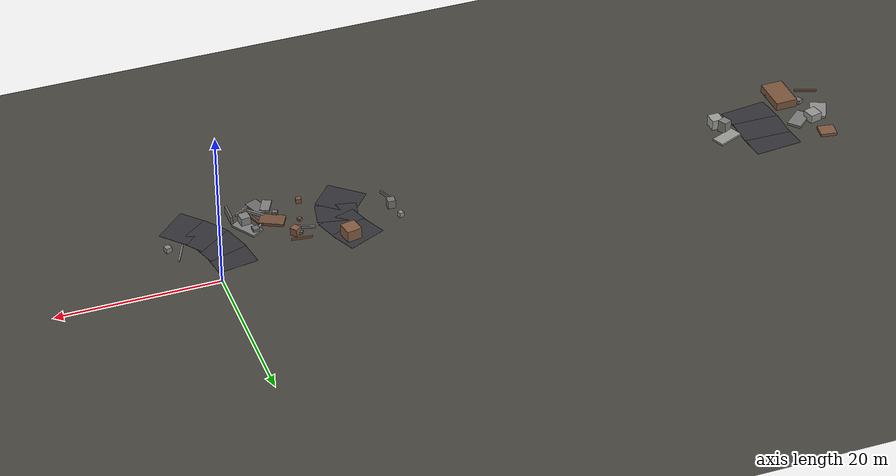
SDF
<sdf version="1.6">
 <world name="navitas_arena">
  <model name="ground_plane">
   <static>true</static>
   <link name="link">
    <collision name="collision">
     <geometry><plane><normal>0 0 1</normal><size>400 400</size></plane></geometry>
     <surface><friction><ode><mu>0.820</mu><mu2>0.820</mu2></ode></friction></surface>
    </collision>
    <visual name="visual">
     <cast_shadows>false</cast_shadows>
     <geometry><plane><normal>0 0 1</normal><size>400 400</size></plane></geometry>
     <material><ambient>0.280 0.270 0.250 1</ambient><diffuse>0.280 0.270 0.250 1</diffuse></material>
    </visual>
   </link>
  </model>
  <model name="road_kolay_3_10">
   <static>true</static>
   <pose>-71.006 -9.460 0.040 0 0 1.691</pose>
   <link name="link">
    <collision name="col"><geometry><box><size>3.841 6.000 0.020</size></box></geometry></collision>
    <visual name="vis">
     <geometry><box><size>3.841 6.000 0.020</size></box></geometry>
     <material><ambient>0.20 0.20 0.22 1</ambient><diffuse>0.20 0.20 0.22 1</diffuse></material>
    </visual>
   </link>
  </model>
  <model name="road_kolay_3_11">
   <static>true</static>
   <pose>-71.169 -6.600 0.040 0 0 1.562</pose>
   <link name="link">
    <collision name="col"><geometry><box><size>3.700 6.000 0.020</size></box></geometry></collision>
    <visual name="vis">
     <geometry><box><size>3.700 6.000 0.020</size></box></geometry>
     <material><ambient>0.20 0.20 0.22 1</ambient><diffuse>0.20 0.20 0.22 1</diffuse></material>
    </visual>
   </link>
  </model>
  <model name="road_kolay_3_12">
   <static>true</static>
   <pose>-71.288 -3.800 0.040 0 0 1.665</pose>
   <link name="link">
    <collision name="col"><geometry><box><size>3.712 6.000 0.020</size></box></geometry></collision>
    <visual name="vis">
     <geometry><box><size>3.712 6.000 0.020</size></box></geometry>
     <material><ambient>0.20 0.20 0.22 1</ambient><diffuse>0.20 0.20 0.22 1</diffuse></material>
    </visual>
   </link>
  </model>
  <model name="deb_kolay_3">
   <static>true</static>
   <pose>-79.308 -7.609 0.137 0 0 1.115</pose>
   <link name="link">
    <collision name="col"><geometry><box><size>3.014 1.987 0.275</size></box></geometry></collision>
    <visual name="vis">
     <geometry><box><size>3.014 1.987 0.275</size></box></geometry>
     <material><ambient>0.56 0.56 0.55 1</ambient><diffuse>0.56 0.56 0.55 1</diffuse></material>
    </visual>
   </link>
  </model>
  <model name="deb_kolay_14">
   <static>true</static>
   <pose>-66.635 -8.527 0.602 0 0 0.726</pose>
   <link name="link">
    <collision name="col"><geometry><box><size>0.950 0.950 1.205</size></box></geometry></collision>
    <visual name="vis">
     <geometry><box><size>0.950 0.950 1.205</size></box></geometry>
     <material><ambient>0.52 0.52 0.51 1</ambient><diffuse>0.52 0.52 0.51 1</diffuse></material>
    </visual>
   </link>
  </model>
  <model name="deb_kolay_21">
   <static>true</static>
   <pose>-66.365 -6.209 0.117 0 0 0.407</pose>
   <link name="link">
    <collision name="col"><geometry><box><size>3.357 1.596 0.233</size></box></geometry></collision>
    <visual name="vis">
     <geometry><box><size>3.357 1.596 0.233</size></box></geometry>
     <material><ambient>0.60 0.60 0.59 1</ambient><diffuse>0.60 0.60 0.59 1</diffuse></material>
    </visual>
   </link>
  </model>
  <model name="deb_kolay_25">
   <static>true</static>
   <pose>-76.251 -6.573 0.159 0 0 0.723</pose>
   <link name="link">
    <collision name="col"><geometry><box><size>3.124 1.762 0.317</size></box></geometry></collision>
    <visual name="vis">
     <geometry><box><size>3.124 1.762 0.317</size></box></geometry>
     <material><ambient>0.48 0.48 0.47 1</ambient><diffuse>0.48 0.48 0.47 1</diffuse></material>
    </visual>
   </link>
  </model>
  <model name="deb_kolay_36">
   <static>true</static>
   <pose>-77.851 -10.136 0.250 0 0 2.086</pose>
   <link name="link">
    <collision name="col"><geometry><box><size>0.731 0.731 0.499</size></box></geometry></collision>
    <visual name="vis">
     <geometry><box><size>0.731 0.731 0.499</size></box></geometry>
     <material><ambient>0.47 0.47 0.46 1</ambient><diffuse>0.47 0.47 0.46 1</diffuse></material>
    </visual>
   </link>
  </model>
  <model name="deb_kolay_39">
   <static>true</static>
   <pose>-77.983 -6.365 0.528 0 0 1.813</pose>
   <link name="link">
    <collision name="col"><geometry><box><size>1.556 1.556 1.057</size></box></geometry></collision>
    <visual name="vis">
     <geometry><box><size>1.556 1.556 1.057</size></box></geometry>
     <material><ambient>0.59 0.59 0.58 1</ambient><diffuse>0.59 0.59 0.58 1</diffuse></material>
    </visual>
   </link>
  </model>
  <model name="deb_kolay_44">
   <static>true</static>
   <pose>-78.428 -3.125 0.188 0 0 2.985</pose>
   <link name="link">
    <collision name="col"><geometry><box><size>2.029 1.820 0.375</size></box></geometry></collision>
    <visual name="vis">
     <geometry><box><size>2.029 1.820 0.375</size></box></geometry>
     <material><ambient>0.50 0.35 0.25 1</ambient><diffuse>0.50 0.35 0.25 1</diffuse></material>
    </visual>
   </link>
  </model>
  <model name="deb_kolay_55">
   <static>true</static>
   <pose>-75.973 -12.256 0.158 0 0 0.203</pose>
   <link name="link">
    <collision name="col"><geometry><box><size>2.849 1.583 0.316</size></box></geometry></collision>
    <visual name="vis">
     <geometry><box><size>2.849 1.583 0.316</size></box></geometry>
     <material><ambient>0.45 0.45 0.44 1</ambient><diffuse>0.45 0.45 0.44 1</diffuse></material>
    </visual>
   </link>
  </model>
  <model name="deb_kolay_103">
   <static>true</static>
   <pose>-79.718 -12.136 0.106 0 0 2.789</pose>
   <link name="link">
    <collision name="col"><geometry><box><size>2.770 0.225 0.213</size></box></geometry></collision>
    <visual name="vis">
     <geometry><box><size>2.770 0.225 0.213</size></box></geometry>
     <material><ambient>0.45 0.32 0.23 1</ambient><diffuse>0.45 0.32 0.23 1</diffuse></material>
    </visual>
   </link>
  </model>
  <model name="deb_kolay_140">
   <static>true</static>
   <pose>-66.705 -7.771 0.739 0 0 2.046</pose>
   <link name="link">
    <collision name="col"><geometry><box><size>1.137 1.137 1.478</size></box></geometry></collision>
    <visual name="vis">
     <geometry><box><size>1.137 1.137 1.478</size></box></geometry>
     <material><ambient>0.49 0.49 0.48 1</ambient><diffuse>0.49 0.49 0.48 1</diffuse></material>
    </visual>
   </link>
  </model>
  <model name="chic_kolay_2">
   <static>true</static>
   <pose>-75.887 -11.678 0.500 0 0 1.593</pose>
   <link name="link">
    <collision name="col"><geometry><box><size>4.420 2.785 1.000</size></box></geometry></collision>
    <visual name="vis">
     <geometry><box><size>4.420 2.785 1.000</size></box></geometry>
     <material><ambient>0.48 0.34 0.24 1</ambient><diffuse>0.48 0.34 0.24 1</diffuse></material>
    </visual>
   </link>
  </model>
  <model name="chic_kolay_3">
   <static>true</static>
   <pose>-66.035 -9.025 0.657 0 0 0.033</pose>
   <link name="link">
    <collision name="col"><geometry><box><size>1.482 1.482 1.313</size></box></geometry></collision>
    <visual name="vis">
     <geometry><box><size>1.482 1.482 1.313</size></box></geometry>
     <material><ambient>0.62 0.62 0.61 1</ambient><diffuse>0.62 0.62 0.61 1</diffuse></material>
    </visual>
   </link>
  </model>
  <model name="road_orta_1_7">
   <static>true</static>
   <pose>-17.834 -10.426 0.040 0 0 0.863</pose>
   <link name="link">
    <collision name="col"><geometry><box><size>4.138 5.000 0.020</size></box></geometry></collision>
    <visual name="vis">
     <geometry><box><size>4.138 5.000 0.020</size></box></geometry>
     <material><ambient>0.20 0.20 0.22 1</ambient><diffuse>0.20 0.20 0.22 1</diffuse></material>
    </visual>
   </link>
  </model>
  <model name="road_orta_1_8">
   <static>true</static>
   <pose>-16.542 -8.014 0.040 0 0 1.371</pose>
   <link name="link">
    <collision name="col"><geometry><box><size>3.310 5.000 0.020</size></box></geometry></collision>
    <visual name="vis">
     <geometry><box><size>3.310 5.000 0.020</size></box></geometry>
     <material><ambient>0.20 0.20 0.22 1</ambient><diffuse>0.20 0.20 0.22 1</diffuse></material>
    </visual>
   </link>
  </model>
  <model name="road_orta_1_9">
   <static>true</static>
   <pose>-16.684 -5.667 0.040 0 0 1.886</pose>
   <link name="link">
    <collision name="col"><geometry><box><size>3.354 5.000 0.020</size></box></geometry></collision>
    <visual name="vis">
     <geometry><box><size>3.354 5.000 0.020</size></box></geometry>
     <material><ambient>0.20 0.20 0.22 1</ambient><diffuse>0.20 0.20 0.22 1</diffuse></material>
    </visual>
   </link>
  </model>
  <model name="road_orta_1_10">
   <static>true</static>
   <pose>-17.594 -3.333 0.040 0 0 1.997</pose>
   <link name="link">
    <collision name="col"><geometry><box><size>3.462 5.000 0.020</size></box></geometry></collision>
    <visual name="vis">
     <geometry><box><size>3.462 5.000 0.020</size></box></geometry>
     <material><ambient>0.20 0.20 0.22 1</ambient><diffuse>0.20 0.20 0.22 1</diffuse></material>
    </visual>
   </link>
  </model>
  <model name="road_orta_2_5">
   <static>true</static>
   <pose>1.414 -11.124 0.040 0 0 2.332</pose>
   <link name="link">
    <collision name="col"><geometry><box><size>3.802 5.000 0.020</size></box></geometry></collision>
    <visual name="vis">
     <geometry><box><size>3.802 5.000 0.020</size></box></geometry>
     <material><ambient>0.20 0.20 0.22 1</ambient><diffuse>0.20 0.20 0.22 1</diffuse></material>
    </visual>
   </link>
  </model>
  <model name="road_orta_2_6">
   <static>true</static>
   <pose>-0.355 -9.036 0.040 0 0 2.208</pose>
   <link name="link">
    <collision name="col"><geometry><box><size>3.480 5.000 0.020</size></box></geometry></collision>
    <visual name="vis">
     <geometry><box><size>3.480 5.000 0.020</size></box></geometry>
     <material><ambient>0.20 0.20 0.22 1</ambient><diffuse>0.20 0.20 0.22 1</diffuse></material>
    </visual>
   </link>
  </model>
  <model name="road_orta_2_7">
   <static>true</static>
   <pose>-1.581 -6.600 0.040 0 0 1.887</pose>
   <link name="link">
    <collision name="col"><geometry><box><size>3.846 5.000 0.020</size></box></geometry></collision>
    <visual name="vis">
     <geometry><box><size>3.846 5.000 0.020</size></box></geometry>
     <material><ambient>0.20 0.20 0.22 1</ambient><diffuse>0.20 0.20 0.22 1</diffuse></material>
    </visual>
   </link>
  </model>
  <model name="road_orta_2_8">
   <static>true</static>
   <pose>-2.257 -3.800 0.040 0 0 1.725</pose>
   <link name="link">
    <collision name="col"><geometry><box><size>3.734 5.000 0.020</size></box></geometry></collision>
    <visual name="vis">
     <geometry><box><size>3.734 5.000 0.020</size></box></geometry>
     <material><ambient>0.20 0.20 0.22 1</ambient><diffuse>0.20 0.20 0.22 1</diffuse></material>
    </visual>
   </link>
  </model>
  <model name="blk_orta_1_1_0">
   <static>true</static>
   <pose>-16.685 -3.077 0.737 0 0 1.754</pose>
   <link name="link">
    <collision name="col"><geometry><box><size>1.858 1.858 1.474</size></box></geometry></collision>
    <visual name="vis">
     <geometry><box><size>1.858 1.858 1.474</size></box></geometry>
     <material><ambient>0.52 0.36 0.26 1</ambient><diffuse>0.52 0.36 0.26 1</diffuse></material>
    </visual>
   </link>
  </model>
  <model name="deb_orta_12">
   <static>true</static>
   <pose>4.338 -7.650 0.321 0 0 1.867</pose>
   <link name="link">
    <collision name="col"><geometry><box><size>0.700 0.700 0.641</size></box></geometry></collision>
    <visual name="vis">
     <geometry><box><size>0.700 0.700 0.641</size></box></geometry>
     <material><ambient>0.53 0.53 0.52 1</ambient><diffuse>0.53 0.53 0.52 1</diffuse></material>
    </visual>
   </link>
  </model>
  <model name="deb_orta_19">
   <static>true</static>
   <pose>-11.115 -4.610 0.116 0 0 3.035</pose>
   <link name="link">
    <collision name="col"><geometry><box><size>2.524 0.191 0.233</size></box></geometry></collision>
    <visual name="vis">
     <geometry><box><size>2.524 0.191 0.233</size></box></geometry>
     <material><ambient>0.49 0.34 0.24 1</ambient><diffuse>0.49 0.34 0.24 1</diffuse></material>
    </visual>
   </link>
  </model>
  <model name="deb_orta_33">
   <static>true</static>
   <pose>-5.612 -9.663 0.622 0 0 0.118</pose>
   <link name="link">
    <collision name="col"><geometry><box><size>1.192 1.192 1.244</size></box></geometry></collision>
    <visual name="vis">
     <geometry><box><size>1.192 1.192 1.244</size></box></geometry>
     <material><ambient>0.51 0.51 0.50 1</ambient><diffuse>0.51 0.51 0.50 1</diffuse></material>
    </visual>
   </link>
  </model>
  <model name="deb_orta_45">
   <static>true</static>
   <pose>-7.937 -12.143 0.138 0 0 1.935</pose>
   <link name="link">
    <collision name="col"><geometry><box><size>2.558 1.637 0.276</size></box></geometry></collision>
    <visual name="vis">
     <geometry><box><size>2.558 1.637 0.276</size></box></geometry>
     <material><ambient>0.43 0.43 0.42 1</ambient><diffuse>0.43 0.43 0.42 1</diffuse></material>
    </visual>
   </link>
  </model>
  <model name="deb_orta_46">
   <static>true</static>
   <pose>-7.087 -9.602 0.115 0 0 1.903</pose>
   <link name="link">
    <collision name="col"><geometry><box><size>2.209 0.279 0.231</size></box></geometry></collision>
    <visual name="vis">
     <geometry><box><size>2.209 0.279 0.231</size></box></geometry>
     <material><ambient>0.50 0.35 0.25 1</ambient><diffuse>0.50 0.35 0.25 1</diffuse></material>
    </visual>
   </link>
  </model>
  <model name="deb_orta_47">
   <static>true</static>
   <pose>-8.856 -9.048 0.172 0 0 2.671</pose>
   <link name="link">
    <collision name="col"><geometry><box><size>3.031 1.862 0.344</size></box></geometry></collision>
    <visual name="vis">
     <geometry><box><size>3.031 1.862 0.344</size></box></geometry>
     <material><ambient>0.45 0.32 0.23 1</ambient><diffuse>0.45 0.32 0.23 1</diffuse></material>
    </visual>
   </link>
  </model>
  <model name="deb_orta_63">
   <static>true</static>
   <pose>-12.157 -6.549 0.137 0 0 2.764</pose>
   <link name="link">
    <collision name="col"><geometry><box><size>2.403 0.289 0.275</size></box></geometry></collision>
    <visual name="vis">
     <geometry><box><size>2.403 0.289 0.275</size></box></geometry>
     <material><ambient>0.46 0.46 0.45 1</ambient><diffuse>0.46 0.46 0.45 1</diffuse></material>
    </visual>
   </link>
  </model>
  <model name="deb_orta_65">
   <static>true</static>
   <pose>-12.931 -11.662 0.286 0 0 1.376</pose>
   <link name="link">
    <collision name="col"><geometry><box><size>0.618 0.618 0.572</size></box></geometry></collision>
    <visual name="vis">
     <geometry><box><size>0.618 0.618 0.572</size></box></geometry>
     <material><ambient>0.50 0.35 0.25 1</ambient><diffuse>0.50 0.35 0.25 1</diffuse></material>
    </visual>
   </link>
  </model>
  <model name="deb_orta_72">
   <static>true</static>
   <pose>-7.143 -8.460 0.120 0 0 0.717</pose>
   <link name="link">
    <collision name="col"><geometry><box><size>1.600 0.214 0.240</size></box></geometry></collision>
    <visual name="vis">
     <geometry><box><size>1.600 0.214 0.240</size></box></geometry>
     <material><ambient>0.54 0.54 0.53 1</ambient><diffuse>0.54 0.54 0.53 1</diffuse></material>
    </visual>
   </link>
  </model>
  <model name="deb_orta_92">
   <static>true</static>
   <pose>-23.019 -7.055 0.536 0 0 3.068</pose>
   <link name="link">
    <collision name="col"><geometry><box><size>0.947 0.947 1.072</size></box></geometry></collision>
    <visual name="vis">
     <geometry><box><size>0.947 0.947 1.072</size></box></geometry>
     <material><ambient>0.46 0.46 0.45 1</ambient><diffuse>0.46 0.46 0.45 1</diffuse></material>
    </visual>
   </link>
  </model>
  <model name="deb_orta_95">
   <static>true</static>
   <pose>-23.195 -8.880 0.181 0 0 1.931</pose>
   <link name="link">
    <collision name="col"><geometry><box><size>2.641 0.184 0.362</size></box></geometry></collision>
    <visual name="vis">
     <geometry><box><size>2.641 0.184 0.362</size></box></geometry>
     <material><ambient>0.47 0.47 0.46 1</ambient><diffuse>0.47 0.47 0.46 1</diffuse></material>
    </visual>
   </link>
  </model>
  <model name="deb_orta_100">
   <static>true</static>
   <pose>-5.678 -10.947 0.262 0 0 2.417</pose>
   <link name="link">
    <collision name="col"><geometry><box><size>0.681 0.681 0.524</size></box></geometry></collision>
    <visual name="vis">
     <geometry><box><size>0.681 0.681 0.524</size></box></geometry>
     <material><ambient>0.51 0.36 0.26 1</ambient><diffuse>0.51 0.36 0.26 1</diffuse></material>
    </visual>
   </link>
  </model>
  <model name="deb_orta_103">
   <static>true</static>
   <pose>-6.432 -7.796 0.300 0 0 1.640</pose>
   <link name="link">
    <collision name="col"><geometry><box><size>0.788 0.788 0.601</size></box></geometry></collision>
    <visual name="vis">
     <geometry><box><size>0.788 0.788 0.601</size></box></geometry>
     <material><ambient>0.43 0.43 0.43 1</ambient><diffuse>0.43 0.43 0.43 1</diffuse></material>
    </visual>
   </link>
  </model>
  <model name="deb_orta_129">
   <static>true</static>
   <pose>-6.093 -12.198 0.124 0 0 0.622</pose>
   <link name="link">
    <collision name="col"><geometry><box><size>2.556 0.158 0.248</size></box></geometry></collision>
    <visual name="vis">
     <geometry><box><size>2.556 0.158 0.248</size></box></geometry>
     <material><ambient>0.56 0.56 0.55 1</ambient><diffuse>0.56 0.56 0.55 1</diffuse></material>
    </visual>
   </link>
  </model>
  <model name="deb_orta_136">
   <static>true</static>
   <pose>-10.701 -5.728 0.497 0 0 2.223</pose>
   <link name="link">
    <collision name="col"><geometry><box><size>0.929 0.929 0.994</size></box></geometry></collision>
    <visual name="vis">
     <geometry><box><size>0.929 0.929 0.994</size></box></geometry>
     <material><ambient>0.52 0.36 0.26 1</ambient><diffuse>0.52 0.36 0.26 1</diffuse></material>
    </visual>
   </link>
  </model>
  <model name="deb_orta_141">
   <static>true</static>
   <pose>-11.972 -8.174 0.168 0 0 0.398</pose>
   <link name="link">
    <collision name="col"><geometry><box><size>0.454 0.454 0.337</size></box></geometry></collision>
    <visual name="vis">
     <geometry><box><size>0.454 0.454 0.337</size></box></geometry>
     <material><ambient>0.47 0.33 0.24 1</ambient><diffuse>0.47 0.33 0.24 1</diffuse></material>
    </visual>
   </link>
  </model>
  <model name="deb_orta_156">
   <static>true</static>
   <pose>3.075 -6.635 0.103 0 0 1.155</pose>
   <link name="link">
    <collision name="col"><geometry><box><size>2.990 0.177 0.207</size></box></geometry></collision>
    <visual name="vis">
     <geometry><box><size>2.990 0.177 0.207</size></box></geometry>
     <material><ambient>0.57 0.57 0.56 1</ambient><diffuse>0.57 0.57 0.56 1</diffuse></material>
    </visual>
   </link>
  </model>
  <model name="deb_orta_157">
   <static>true</static>
   <pose>-9.494 -10.020 0.328 0 0 1.014</pose>
   <link name="link">
    <collision name="col"><geometry><box><size>0.595 0.595 0.657</size></box></geometry></collision>
    <visual name="vis">
     <geometry><box><size>0.595 0.595 0.657</size></box></geometry>
     <material><ambient>0.43 0.43 0.42 1</ambient><diffuse>0.43 0.43 0.42 1</diffuse></material>
    </visual>
   </link>
  </model>
  <model name="deb_orta_158">
   <static>true</static>
   <pose>-8.963 -12.016 0.148 0 0 1.106</pose>
   <link name="link">
    <collision name="col"><geometry><box><size>2.088 1.146 0.295</size></box></geometry></collision>
    <visual name="vis">
     <geometry><box><size>2.088 1.146 0.295</size></box></geometry>
     <material><ambient>0.50 0.50 0.49 1</ambient><diffuse>0.50 0.50 0.49 1</diffuse></material>
    </visual>
   </link>
  </model>
  <model name="deb_orta_169">
   <static>true</static>
   <pose>-5.663 -8.682 0.122 0 0 2.132</pose>
   <link name="link">
    <collision name="col"><geometry><box><size>3.407 1.710 0.244</size></box></geometry></collision>
    <visual name="vis">
     <geometry><box><size>3.407 1.710 0.244</size></box></geometry>
     <material><ambient>0.50 0.50 0.49 1</ambient><diffuse>0.50 0.50 0.49 1</diffuse></material>
    </visual>
   </link>
  </model>
  <model name="deb_orta_180">
   <static>true</static>
   <pose>-23.497 -4.833 0.306 0 0 0.196</pose>
   <link name="link">
    <collision name="col"><geometry><box><size>0.554 0.554 0.612</size></box></geometry></collision>
    <visual name="vis">
     <geometry><box><size>0.554 0.554 0.612</size></box></geometry>
     <material><ambient>0.56 0.56 0.54 1</ambient><diffuse>0.56 0.56 0.54 1</diffuse></material>
    </visual>
   </link>
  </model>
  <model name="deb_orta_182">
   <static>true</static>
   <pose>-11.286 -5.574 0.193 0 0 2.515</pose>
   <link name="link">
    <collision name="col"><geometry><box><size>0.457 0.457 0.386</size></box></geometry></collision>
    <visual name="vis">
     <geometry><box><size>0.457 0.457 0.386</size></box></geometry>
     <material><ambient>0.44 0.44 0.44 1</ambient><diffuse>0.44 0.44 0.44 1</diffuse></material>
    </visual>
   </link>
  </model>
  <model name="deb_orta_183">
   <static>true</static>
   <pose>-8.397 -12.322 0.096 0 0 1.940</pose>
   <link name="link">
    <collision name="col"><geometry><box><size>2.814 0.264 0.192</size></box></geometry></collision>
    <visual name="vis">
     <geometry><box><size>2.814 0.264 0.192</size></box></geometry>
     <material><ambient>0.54 0.54 0.53 1</ambient><diffuse>0.54 0.54 0.53 1</diffuse></material>
    </visual>
   </link>
  </model>
  <model name="deb_orta_185">
   <static>true</static>
   <pose>-7.397 -11.001 0.176 0 0 2.361</pose>
   <link name="link">
    <collision name="col"><geometry><box><size>2.274 0.275 0.353</size></box></geometry></collision>
    <visual name="vis">
     <geometry><box><size>2.274 0.275 0.353</size></box></geometry>
     <material><ambient>0.56 0.56 0.55 1</ambient><diffuse>0.56 0.56 0.55 1</diffuse></material>
    </visual>
   </link>
  </model>
  <model name="chic_orta_2">
   <static>true</static>
   <pose>-4.202 -11.367 0.500 0 0 1.573</pose>
   <link name="link">
    <collision name="col"><geometry><box><size>2.524 0.277 1.000</size></box></geometry></collision>
    <visual name="vis">
     <geometry><box><size>2.524 0.277 1.000</size></box></geometry>
     <material><ambient>0.43 0.43 0.43 1</ambient><diffuse>0.43 0.43 0.43 1</diffuse></material>
    </visual>
   </link>
  </model>
 </world>
</sdf>
